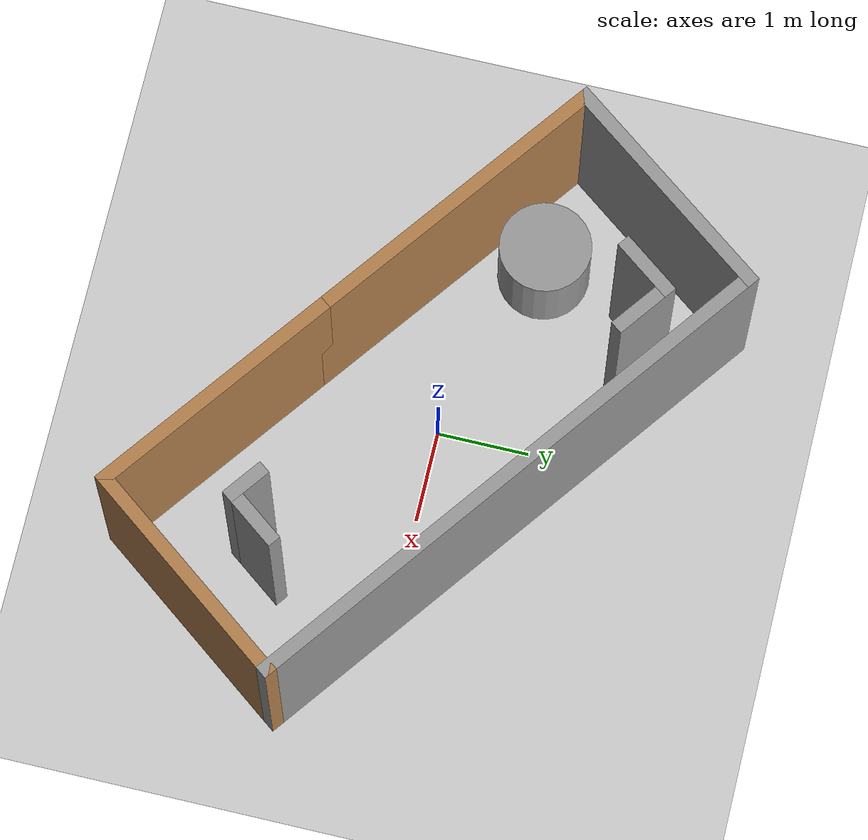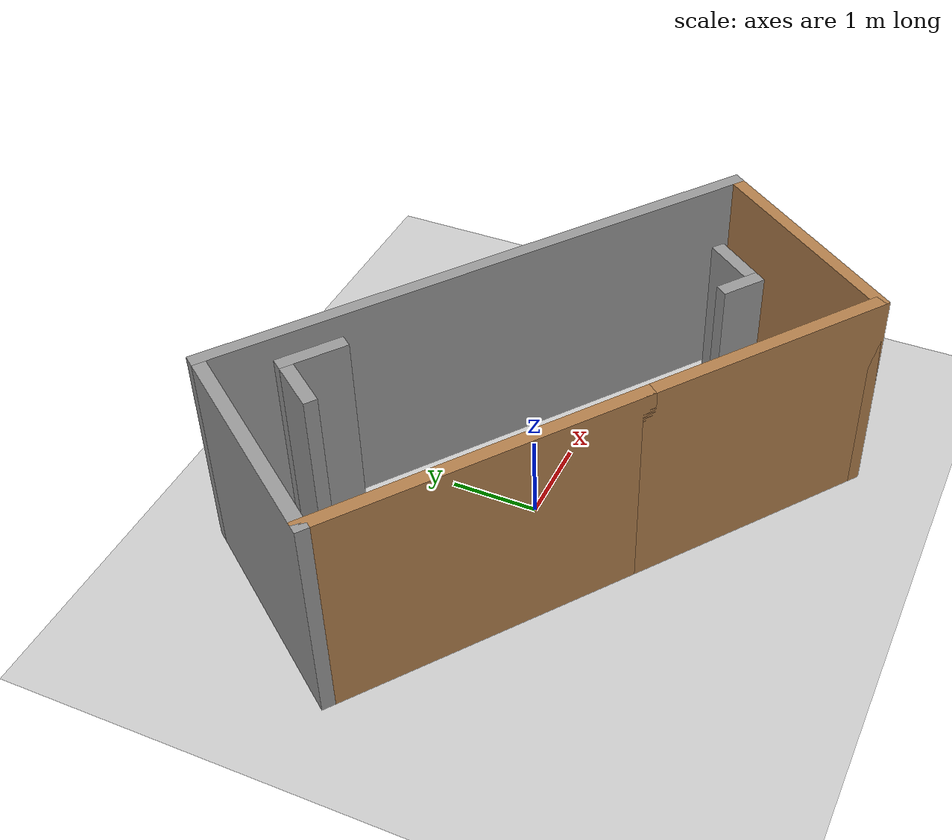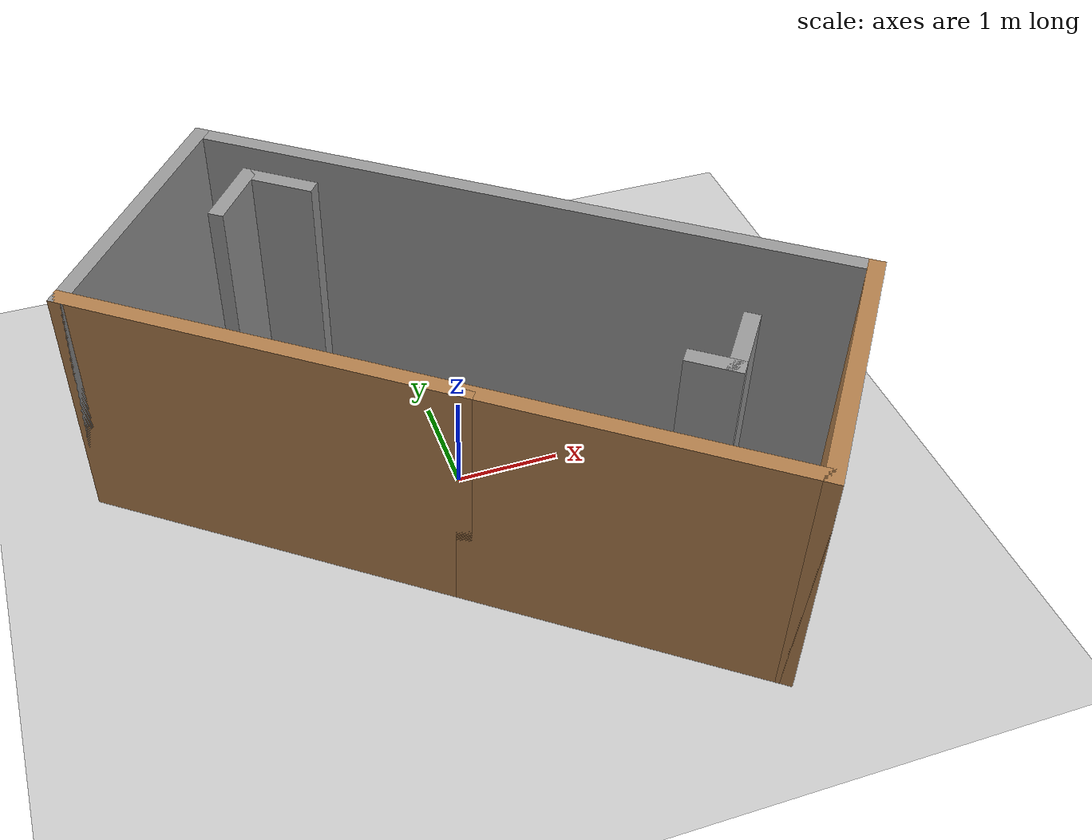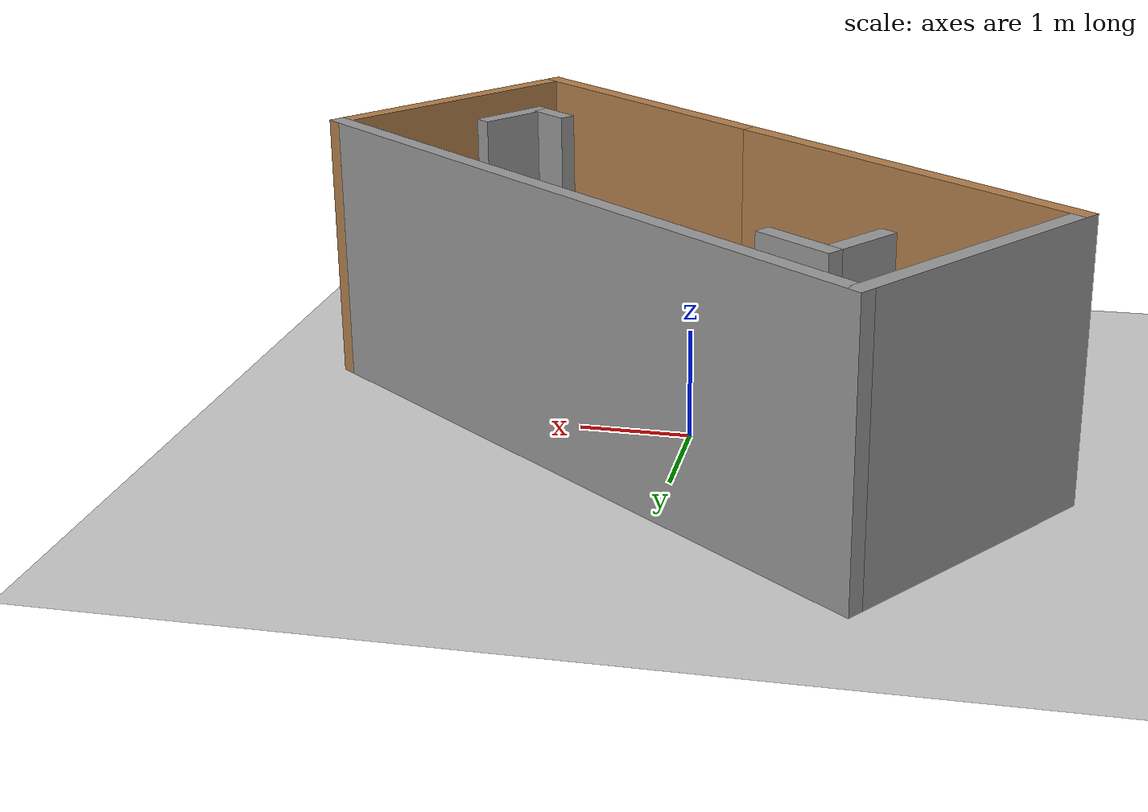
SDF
<sdf version="1.6">
 <world name="default">
  <light name="sun" type="directional">
   <pose>0 0 10 0 -0 0</pose>
   <diffuse>0.8 0.8 0.8 1</diffuse>
   <specular>0.2 0.2 0.2 1</specular>
   <attenuation>
    <range>1000</range>
    <constant>0.9</constant>
    <linear>0.01</linear>
    <quadratic>0.001</quadratic>
   </attenuation>
   <direction>-0.5 0.1 -0.9</direction>
  </light>
  <model name="ground_plane">
   <static>1</static>
   <link name="link">
    <collision name="collision">
     <geometry><plane><normal>0 0 1</normal><size>100 100</size></plane></geometry>
     <surface>
      <contact><collide_bitmask>65535</collide_bitmask></contact>
      <friction><ode><mu>100</mu><mu2>50</mu2></ode></friction>
     </surface>
    </collision>
    <visual name="visual">
     <cast_shadows>0</cast_shadows>
     <geometry><plane><normal>0 0 1</normal><size>100 100</size></plane></geometry>
     <material>
      <script><uri>file://media/materials/scripts/gazebo.material</uri><name>Gazebo/Grey</name></script>
     </material>
    </visual>
   </link>
  </model>
  <gravity>0 0 -9.8</gravity>
  <magnetic_field>6e-06 2.3e-05 -4.2e-05</magnetic_field>
  <atmosphere type="adiabatic"/>
  <physics name="default_physics" default="0" type="ode">
   <max_step_size>0.001</max_step_size>
   <real_time_factor>1</real_time_factor>
   <real_time_update_rate>1000</real_time_update_rate>
  </physics>
  <scene><ambient>0.4 0.4 0.4 1</ambient><background>0.7 0.7 0.7 1</background><shadows>1</shadows></scene>
  <audio><device>default</device></audio>
  <spherical_coordinates>
   <surface_model>EARTH_WGS84</surface_model>
   <latitude_deg>0</latitude_deg>
   <longitude_deg>0</longitude_deg>
   <elevation>0</elevation>
   <heading_deg>0</heading_deg>
  </spherical_coordinates>
  <model name="maze">
   <pose>0.127267 -0.072886 0 0 0 -0.64231</pose>
   <link name="Wall_0">
    <collision name="Wall_0_Collision">
     <geometry><box><size>2.75 0.15 2.5</size></box></geometry>
     <pose>0 0 1.25 0 -0 0</pose>
    </collision>
    <visual name="Wall_0_Visual">
     <pose>0 0 1.25 0 -0 0</pose>
     <geometry><box><size>2.75 0.15 2.5</size></box></geometry>
     <material>
      <script><uri>file://media/materials/scripts/gazebo.material</uri><name>Gazebo/Grey</name></script>
      <ambient>1 1 1 1</ambient>
     </material>
     <meta><layer>0</layer></meta>
    </visual>
    <pose>-3.225 -0 0 0 -0 -1.5708</pose>
   </link>
   <link name="Wall_1">
    <collision name="Wall_1_Collision">
     <geometry><box><size>3.75 0.15 2.5</size></box></geometry>
     <pose>0 0 1.25 0 -0 0</pose>
    </collision>
    <visual name="Wall_1_Visual">
     <pose>0 0 1.25 0 -0 0</pose>
     <geometry><box><size>3.75 0.15 2.5</size></box></geometry>
     <material>
      <script><uri>file://media/materials/scripts/gazebo.material</uri><name>Gazebo/Wood</name></script>
      <ambient>1 1 1 1</ambient>
     </material>
     <meta><layer>0</layer></meta>
    </visual>
    <pose>-1.425 -1.3 0 0 -0 0</pose>
   </link>
   <link name="Wall_10">
    <collision name="Wall_10_Collision">
     <geometry><box><size>0.5 0.15 2.5</size></box></geometry>
     <pose>0 0 1.25 0 -0 0</pose>
    </collision>
    <visual name="Wall_10_Visual">
     <pose>0 0 1.25 0 -0 0</pose>
     <geometry><box><size>0.5 0.15 2.5</size></box></geometry>
     <material>
      <script><uri>file://media/materials/scripts/gazebo.material</uri><name>Gazebo/Grey</name></script>
      <ambient>1 1 1 1</ambient>
     </material>
     <meta><layer>0</layer></meta>
    </visual>
    <pose>2.15 -0.34 0 0 -0 3.14159</pose>
   </link>
   <link name="Wall_2">
    <collision name="Wall_2_Collision">
     <geometry><box><size>3 0.15 2.5</size></box></geometry>
     <pose>0 0 1.25 0 -0 0</pose>
    </collision>
    <visual name="Wall_2_Visual">
     <pose>0 0 1.25 0 -0 0</pose>
     <geometry><box><size>3 0.15 2.5</size></box></geometry>
     <material>
      <script><uri>file://media/materials/scripts/gazebo.material</uri><name>Gazebo/Wood</name></script>
      <ambient>1 1 1 1</ambient>
     </material>
     <meta><layer>0</layer></meta>
    </visual>
    <pose>1.8 -1.3 0 0 -0 0</pose>
   </link>
   <link name="Wall_3">
    <collision name="Wall_3_Collision">
     <geometry><box><size>2.75 0.15 2.5</size></box></geometry>
     <pose>0 0 1.25 0 -0 0</pose>
    </collision>
    <visual name="Wall_3_Visual">
     <pose>0 0 1.25 0 -0 0</pose>
     <geometry><box><size>2.75 0.15 2.5</size></box></geometry>
     <material>
      <script><uri>file://media/materials/scripts/gazebo.material</uri><name>Gazebo/Wood</name></script>
      <ambient>1 1 1 1</ambient>
     </material>
     <meta><layer>0</layer></meta>
    </visual>
    <pose>3.225 -0 0 0 -0 1.5708</pose>
   </link>
   <link name="Wall_4">
    <collision name="Wall_4_Collision">
     <geometry><box><size>6.6 0.15 2.5</size></box></geometry>
     <pose>0 0 1.25 0 -0 0</pose>
    </collision>
    <visual name="Wall_4_Visual">
     <pose>0 0 1.25 0 -0 0</pose>
     <geometry><box><size>6.6 0.15 2.5</size></box></geometry>
     <material>
      <script><uri>file://media/materials/scripts/gazebo.material</uri><name>Gazebo/Grey</name></script>
      <ambient>1 1 1 1</ambient>
     </material>
     <meta><layer>0</layer></meta>
    </visual>
    <pose>-0 1.3 0 0 -0 3.14159</pose>
   </link>
   <link name="Wall_6">
    <collision name="Wall_6_Collision">
     <geometry><box><size>0.75 0.15 2.5</size></box></geometry>
     <pose>0 0 1.25 0 -0 0</pose>
    </collision>
    <visual name="Wall_6_Visual">
     <pose>0 0 1.25 0 -0 0</pose>
     <geometry><box><size>0.75 0.15 2.5</size></box></geometry>
     <material>
      <script><uri>file://media/materials/scripts/gazebo.material</uri><name>Gazebo/Grey</name></script>
      <ambient>1 1 1 1</ambient>
     </material>
     <meta><layer>0</layer></meta>
    </visual>
    <pose>-2.195 0.83 0 0 -0 3.14159</pose>
   </link>
   <link name="Wall_7">
    <collision name="Wall_7_Collision">
     <geometry><box><size>0.75 0.15 2.5</size></box></geometry>
     <pose>0 0 1.25 0 -0 0</pose>
    </collision>
    <visual name="Wall_7_Visual">
     <pose>0 0 1.25 0 -0 0</pose>
     <geometry><box><size>0.75 0.15 2.5</size></box></geometry>
     <material>
      <script><uri>file://media/materials/scripts/gazebo.material</uri><name>Gazebo/Grey</name></script>
      <ambient>1 1 1 1</ambient>
     </material>
     <meta><layer>0</layer></meta>
    </visual>
    <pose>-2.495 0.53 0 0 -0 -1.5708</pose>
   </link>
   <link name="Wall_9">
    <collision name="Wall_9_Collision">
     <geometry><box><size>0.75 0.15 2.5</size></box></geometry>
     <pose>0 0 1.25 0 -0 0</pose>
    </collision>
    <visual name="Wall_9_Visual">
     <pose>0 0 1.25 0 -0 0</pose>
     <geometry><box><size>0.75 0.15 2.5</size></box></geometry>
     <material>
      <script><uri>file://media/materials/scripts/gazebo.material</uri><name>Gazebo/Grey</name></script>
      <ambient>1 1 1 1</ambient>
     </material>
     <meta><layer>0</layer></meta>
    </visual>
    <pose>2.325 -0.04 0 0 -0 -1.5708</pose>
   </link>
   <static>1</static>
  </model>
  <model name="unit_cylinder">
   <pose>-2.0099 0.702707 0.499997 3e-06 4e-06 -0</pose>
   <link name="link">
    <inertial>
     <mass>1</mass>
     <inertia><ixx>0.145833</ixx><ixy>0</ixy><ixz>0</ixz><iyy>0.145833</iyy><iyz>0</iyz><izz>0.125</izz></inertia>
    </inertial>
    <collision name="collision">
     <geometry><cylinder><radius>0.5</radius><length>1</length></cylinder></geometry>
    </collision>
    <visual name="visual">
     <geometry><cylinder><radius>0.5</radius><length>1</length></cylinder></geometry>
     <material>
      <script><name>Gazebo/Grey</name><uri>file://media/materials/scripts/gazebo.material</uri></script>
     </material>
    </visual>
   </link>
  </model>
 </world>
</sdf>
